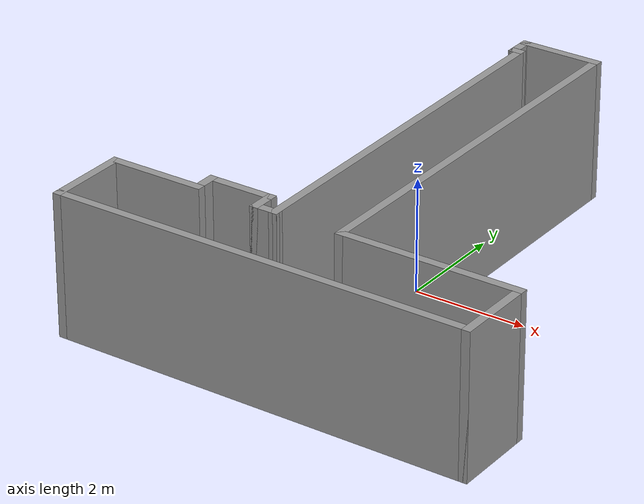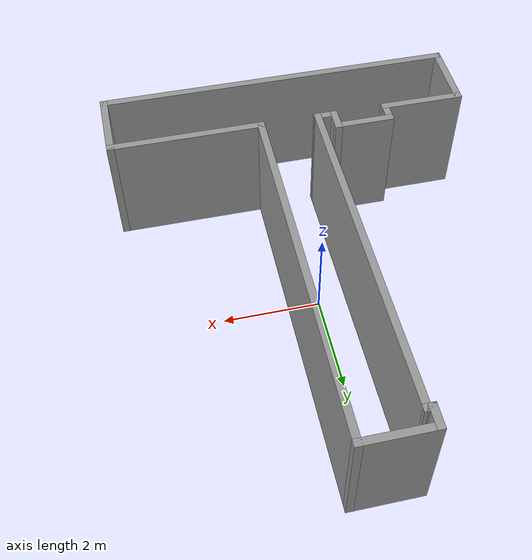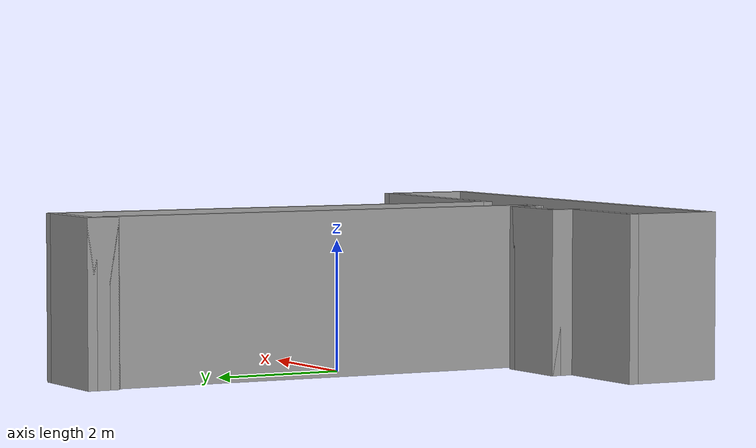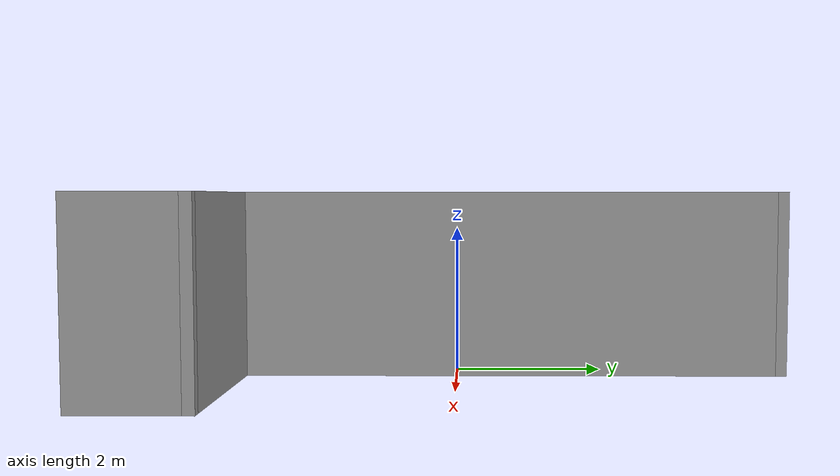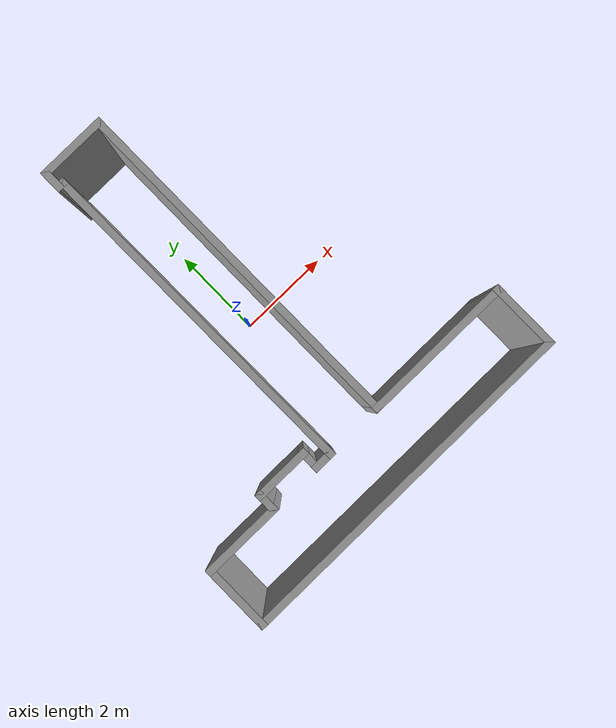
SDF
<?xml version="1.0" ?>
<sdf version="1.4">
  <model name="Verdieping">
    <pose>0.000838 0.061035 0 0 -0 0</pose>
    <link name="Wall_0">
      <collision name="Wall_0_Collision">
        <geometry>
          <box>
            <size>0.5 0.15 2.5</size>
          </box>
        </geometry>
        <pose>0 0 1.25 0 -0 0</pose>
      </collision>
      <visual name="Wall_0_Visual">
        <pose>0 0 1.25 0 -0 0</pose>
        <geometry>
          <box>
            <size>0.5 0.15 2.5</size>
          </box>
        </geometry>
        <material>
          <script>
            <uri>file://media/materials/scripts/gazebo.material</uri>
            <name>Gazebo/Grey</name>
          </script>
          <ambient>1 1 1 1</ambient>
        </material>
      </visual>
      <pose>-0.8 -3 0 0 -0 3.14159</pose>
    </link>
    <link name="Wall_1">
      <collision name="Wall_1_Collision">
        <geometry>
          <box>
            <size>0.5 0.15 2.5</size>
          </box>
        </geometry>
        <pose>0 0 1.25 0 -0 0</pose>
      </collision>
      <visual name="Wall_1_Visual">
        <pose>0 0 1.25 0 -0 0</pose>
        <geometry>
          <box>
            <size>0.5 0.15 2.5</size>
          </box>
        </geometry>
        <material>
          <script>
            <uri>file://media/materials/scripts/gazebo.material</uri>
            <name>Gazebo/Grey</name>
          </script>
          <ambient>1 1 1 1</ambient>
        </material>
      </visual>
      <pose>-0.975 -2.825 0 0 -0 1.5708</pose>
    </link>
    <link name="Wall_10">
      <collision name="Wall_10_Collision">
        <geometry>
          <box>
            <size>1.5 0.15 2.5</size>
          </box>
        </geometry>
        <pose>0 0 1.25 0 -0 0</pose>
      </collision>
      <visual name="Wall_10_Visual">
        <pose>0 0 1.25 0 -0 0</pose>
        <geometry>
          <box>
            <size>1.5 0.15 2.5</size>
          </box>
        </geometry>
        <material>
          <script>
            <uri>file://media/materials/scripts/gazebo.material</uri>
            <name>Gazebo/Grey</name>
          </script>
          <ambient>1 1 1 1</ambient>
        </material>
      </visual>
      <pose>-0.1 4.35 0 0 -0 3.14159</pose>
    </link>
    <link name="Wall_11">
      <collision name="Wall_11_Collision">
        <geometry>
          <box>
            <size>0.5 0.15 2.5</size>
          </box>
        </geometry>
        <pose>0 0 1.25 0 -0 0</pose>
      </collision>
      <visual name="Wall_11_Visual">
        <pose>0 0 1.25 0 -0 0</pose>
        <geometry>
          <box>
            <size>0.5 0.15 2.5</size>
          </box>
        </geometry>
        <material>
          <script>
            <uri>file://media/materials/scripts/gazebo.material</uri>
            <name>Gazebo/Grey</name>
          </script>
          <ambient>1 1 1 1</ambient>
        </material>
      </visual>
      <pose>-0.775 4.175 0 0 0 -1.5708</pose>
    </link>
    <link name="Wall_12">
      <collision name="Wall_12_Collision">
        <geometry>
          <box>
            <size>0.25 0.15 2.5</size>
          </box>
        </geometry>
        <pose>0 0 1.25 0 -0 0</pose>
      </collision>
      <visual name="Wall_12_Visual">
        <pose>0 0 1.25 0 -0 0</pose>
        <geometry>
          <box>
            <size>0.25 0.15 2.5</size>
          </box>
        </geometry>
        <material>
          <script>
            <uri>file://media/materials/scripts/gazebo.material</uri>
            <name>Gazebo/Grey</name>
          </script>
          <ambient>1 1 1 1</ambient>
        </material>
      </visual>
      <pose>-0.725 4 0 0 -0 0</pose>
    </link>
    <link name="Wall_13">
      <collision name="Wall_13_Collision">
        <geometry>
          <box>
            <size>7.15018 0.15 2.5</size>
          </box>
        </geometry>
        <pose>0 0 1.25 0 -0 0</pose>
      </collision>
      <visual name="Wall_13_Visual">
        <pose>0 0 1.25 0 -0 0</pose>
        <geometry>
          <box>
            <size>7.15018 0.15 2.5</size>
          </box>
        </geometry>
        <material>
          <script>
            <uri>file://media/materials/scripts/gazebo.material</uri>
            <name>Gazebo/Grey</name>
          </script>
          <ambient>1 1 1 1</ambient>
        </material>
      </visual>
      <pose>-0.65 0.5 0 0 0 -1.56365</pose>
    </link>
    <link name="Wall_2">
      <collision name="Wall_2_Collision">
        <geometry>
          <box>
            <size>1.25 0.15 2.5</size>
          </box>
        </geometry>
        <pose>0 0 1.25 0 -0 0</pose>
      </collision>
      <visual name="Wall_2_Visual">
        <pose>0 0 1.25 0 -0 0</pose>
        <geometry>
          <box>
            <size>1.25 0.15 2.5</size>
          </box>
        </geometry>
        <material>
          <script>
            <uri>file://media/materials/scripts/gazebo.material</uri>
            <name>Gazebo/Grey</name>
          </script>
          <ambient>1 1 1 1</ambient>
        </material>
      </visual>
      <pose>-1.525 -2.65 0 0 -0 3.14159</pose>
    </link>
    <link name="Wall_3">
      <collision name="Wall_3_Collision">
        <geometry>
          <box>
            <size>0.5 0.15 2.5</size>
          </box>
        </geometry>
        <pose>0 0 1.25 0 -0 0</pose>
      </collision>
      <visual name="Wall_3_Visual">
        <pose>0 0 1.25 0 -0 0</pose>
        <geometry>
          <box>
            <size>0.5 0.15 2.5</size>
          </box>
        </geometry>
        <material>
          <script>
            <uri>file://media/materials/scripts/gazebo.material</uri>
            <name>Gazebo/Grey</name>
          </script>
          <ambient>1 1 1 1</ambient>
        </material>
      </visual>
      <pose>-2.075 -2.825 0 0 0 -1.5708</pose>
    </link>
    <link name="Wall_4">
      <collision name="Wall_4_Collision">
        <geometry>
          <box>
            <size>1.75 0.15 2.5</size>
          </box>
        </geometry>
        <pose>0 0 1.25 0 -0 0</pose>
      </collision>
      <visual name="Wall_4_Visual">
        <pose>0 0 1.25 0 -0 0</pose>
        <geometry>
          <box>
            <size>1.75 0.15 2.5</size>
          </box>
        </geometry>
        <material>
          <script>
            <uri>file://media/materials/scripts/gazebo.material</uri>
            <name>Gazebo/Grey</name>
          </script>
          <ambient>1 1 1 1</ambient>
        </material>
      </visual>
      <pose>-2.875 -3 0 0 -0 3.14159</pose>
    </link>
    <link name="Wall_5">
      <collision name="Wall_5_Collision">
        <geometry>
          <box>
            <size>1.5 0.15 2.5</size>
          </box>
        </geometry>
        <pose>0 0 1.25 0 -0 0</pose>
      </collision>
      <visual name="Wall_5_Visual">
        <pose>0 0 1.25 0 -0 0</pose>
        <geometry>
          <box>
            <size>1.5 0.15 2.5</size>
          </box>
        </geometry>
        <material>
          <script>
            <uri>file://media/materials/scripts/gazebo.material</uri>
            <name>Gazebo/Grey</name>
          </script>
          <ambient>1 1 1 1</ambient>
        </material>
      </visual>
      <pose>-3.675 -3.675 0 0 0 -1.5708</pose>
    </link>
    <link name="Wall_6">
      <collision name="Wall_6_Collision">
        <geometry>
          <box>
            <size>7.5 0.15 2.5</size>
          </box>
        </geometry>
        <pose>0 0 1.25 0 -0 0</pose>
      </collision>
      <visual name="Wall_6_Visual">
        <pose>0 0 1.25 0 -0 0</pose>
        <geometry>
          <box>
            <size>7.5 0.15 2.5</size>
          </box>
        </geometry>
        <material>
          <script>
            <uri>file://media/materials/scripts/gazebo.material</uri>
            <name>Gazebo/Grey</name>
          </script>
          <ambient>1 1 1 1</ambient>
        </material>
      </visual>
      <pose>-0 -4.35 0 0 -0 0</pose>
    </link>
    <link name="Wall_7">
      <collision name="Wall_7_Collision">
        <geometry>
          <box>
            <size>1.5 0.15 2.5</size>
          </box>
        </geometry>
        <pose>0 0 1.25 0 -0 0</pose>
      </collision>
      <visual name="Wall_7_Visual">
        <pose>0 0 1.25 0 -0 0</pose>
        <geometry>
          <box>
            <size>1.5 0.15 2.5</size>
          </box>
        </geometry>
        <material>
          <script>
            <uri>file://media/materials/scripts/gazebo.material</uri>
            <name>Gazebo/Grey</name>
          </script>
          <ambient>1 1 1 1</ambient>
        </material>
      </visual>
      <pose>3.675 -3.675 0 0 -0 1.5708</pose>
    </link>
    <link name="Wall_8">
      <collision name="Wall_8_Collision">
        <geometry>
          <box>
            <size>3.25 0.15 2.5</size>
          </box>
        </geometry>
        <pose>0 0 1.25 0 -0 0</pose>
      </collision>
      <visual name="Wall_8_Visual">
        <pose>0 0 1.25 0 -0 0</pose>
        <geometry>
          <box>
            <size>3.25 0.15 2.5</size>
          </box>
        </geometry>
        <material>
          <script>
            <uri>file://media/materials/scripts/gazebo.material</uri>
            <name>Gazebo/Grey</name>
          </script>
          <ambient>1 1 1 1</ambient>
        </material>
      </visual>
      <pose>2.125 -3 0 0 -0 3.14159</pose>
    </link>
    <link name="Wall_9">
      <collision name="Wall_9_Collision">
        <geometry>
          <box>
            <size>7.5 0.15 2.5</size>
          </box>
        </geometry>
        <pose>0 0 1.25 0 -0 0</pose>
      </collision>
      <visual name="Wall_9_Visual">
        <pose>0 0 1.25 0 -0 0</pose>
        <geometry>
          <box>
            <size>7.5 0.15 2.5</size>
          </box>
        </geometry>
        <material>
          <script>
            <uri>file://media/materials/scripts/gazebo.material</uri>
            <name>Gazebo/Grey</name>
          </script>
          <ambient>1 1 1 1</ambient>
        </material>
      </visual>
      <pose>0.575 0.675 0 0 -0 1.5708</pose>
    </link>
    <static>1</static>
  </model>
</sdf>
